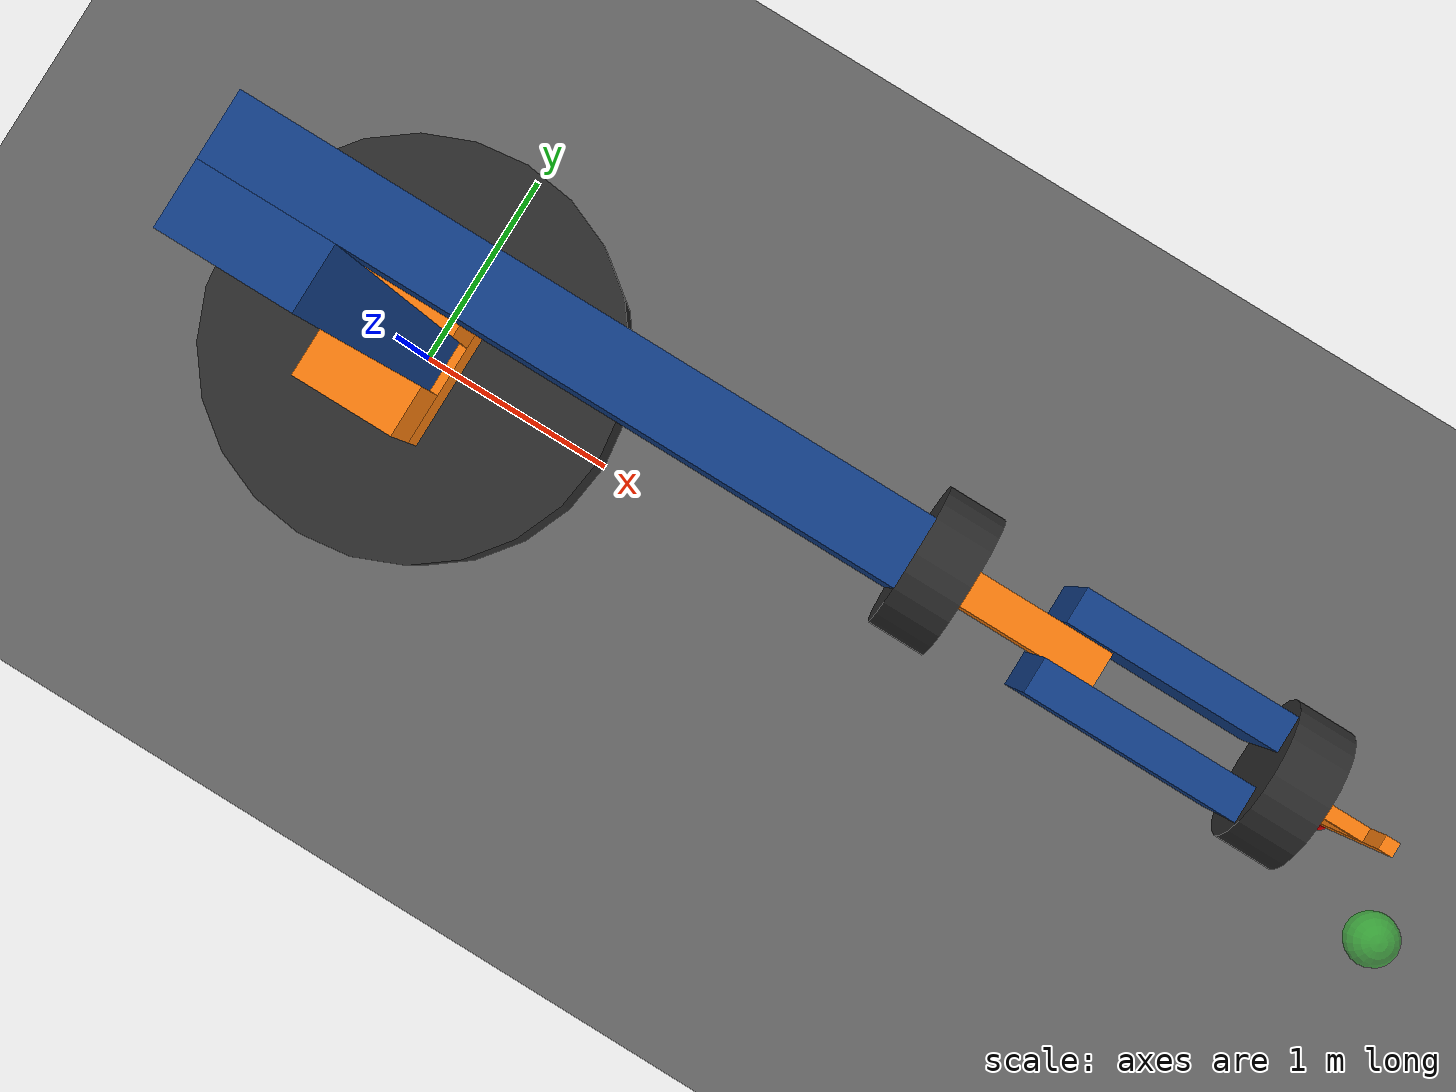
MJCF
<mujoco model="pioneer">
    <compiler angle="radian"/>
    <size njmax="500" nconmax="100"/>

    <!-- we don't need no gravity: this is a purely kinematic environment -->
    <option gravity="0 0 0"/>

    <worldbody>
        <light mode="fixed" directional="true" pos="0 0 10" dir="0 0 -1" ambient="0.1 0.1 0.1"/>

        <body name="ground" pos="0 0 0">
            <geom pos="0 0 0" rgba="0.4 0.4 0.4 1" size="8 8 1" type="plane"/>
        </body>

        <!-- everything related to the robot itself must have the 'robot:' prefix -->
        <body name="robot:base" pos="0 0 0">
            <geom size="1 0.25" pos="0 0 0.25" rgba="0.175 0.175 0.175 1" type="cylinder"/>

            <body name="robot:rotator1" pos="0 0 0.25">
                <joint name="robot:base_to_rotator1" pos="0 0 0" axis="0 0 1" limited="true" range="-1.309 1.309" type="hinge"/>
                <geom size="0.25 0.375 0.125" pos="0 0 0.375" rgba="1 0.5 0.05 1" type="box"/>
                <geom size="0.25 0.125 0.25" pos="0 -0.25 0.75" rgba="1 0.5 0.05 1" type="box"/>
                <geom size="0.25 0.125 0.25" pos="0 0.25 0.75" rgba="1 0.5 0.05 1" type="box"/>

                <body name="robot:arm1" pos="0 0 0.5" euler="0 -1.5708 0">
                    <joint name="robot:rotator1_to_arm1" pos="0.25 0 0" axis="0 1 0" limited="true" range="-1.5708 1.5708" type="hinge"/>
                    <geom size="1.5 0.125 0.25" pos="1.75 0 0" rgba="0.07 0.25 0.54 1" type="box"/>

                    <body name="robot:arm2" pos="0 0 0" euler="0 1.5708 0">
                        <joint name="robot:arm1_to_arm2" pos="0 0 3" axis="0 1 0" limited="true" range="-4.71239 1.5708" type="hinge"/>
                        <geom size="1.25 0.125 0.25" pos="1 0.25 3" rgba="0.07 0.25 0.54 1" type="box"/>

                        <body name="robot:rotator2" pos="0 0 0">
                            <joint name="robot:arm2_to_rotator2" pos="0 0.25 3" axis="1 0 0" limited="true" range="-3.1416 3.1416" type="hinge"/>
                            <geom size="0.25 0.1" pos="2.35 0.25 3" euler="0 1.5708 0" rgba="0.175 0.175 0.175 1" type="cylinder"/>
                            <geom size="0.25 0.0625 0.125" pos="2.69 0.25 3" rgba="1 0.5 0.05 1" type="box"/>

                            <body name="robot:arm3" pos="0 0 0">
                                <joint name="robot:rotator2_to_arm3" pos="2.875 0 3" axis="0 1 0" limited="true" range="-1.5708 1.5708" type="hinge"/>
                                <geom size="0.375 0.0625 0.25" pos="3.125 0.375 3" rgba="0.07 0.25 0.54 1" type="box"/>
                                <geom size="0.375 0.0625 0.25" pos="3.125 0.125 3" rgba="0.07 0.25 0.54 1" type="box"/>

                                <body name="robot:rotator3" pos="0 0 0">
                                    <joint name="robot:arm3_to_rotator3" pos="0 0.25 3" axis="1 0 0" limited="true" range="-3.1416 3.1416" type="hinge"/>
                                    <geom size="0.25 0.1" pos="3.625 0.25 3" euler="0 1.5708 0" rgba="0.175 0.175 0.175 1" type="cylinder"/>
                                    <geom size="0.1 0.025 0.025" pos="3.825 0.25 3" rgba="1 0.5 0.05 1" type="box"/>
                                    <geom size="0.025 0.025 0.4" pos="3.95 0.25 2.8" rgba="1 0.5 0.05 1" type="box"/>

                                    <body name="robot:pointer" pos="0 0 0">
                                        <geom size="0.05" pos="3.95 0.25 2.35" rgba="1 0 0 1" type="sphere"/>
                                    </body>
                                </body>
                            </body>
                        </body>
                    </body>
                </body>
            </body>
        </body>

        <body name="obstacles">
        </body>

        <body name="target" pos="5 0 1">
            <geom conaffinity="0" contype="0" size="0.125" rgba="0.1 0.9 0.1 0.5" type="sphere"/>
        </body>

    </worldbody>
</mujoco>
